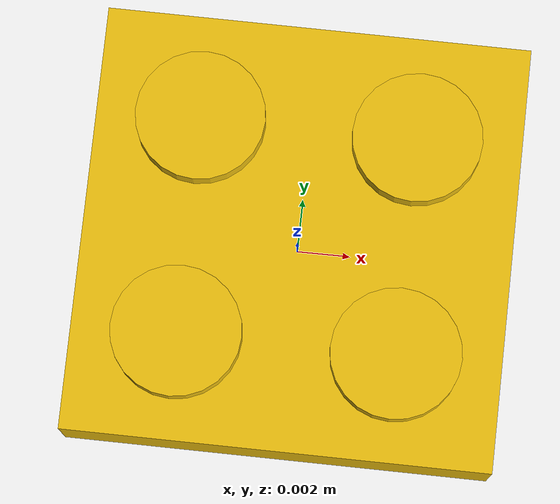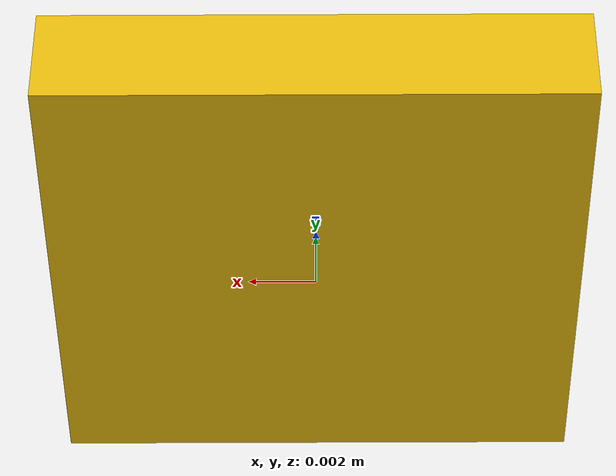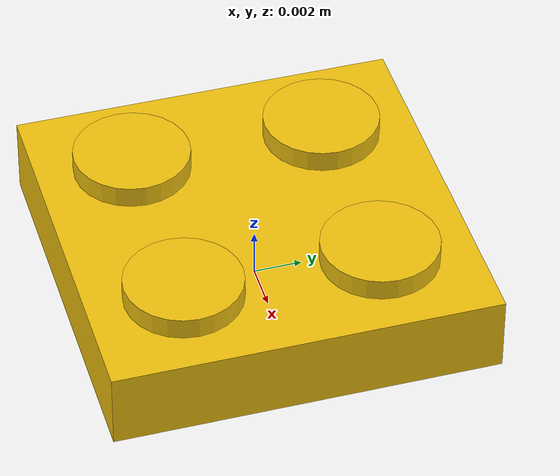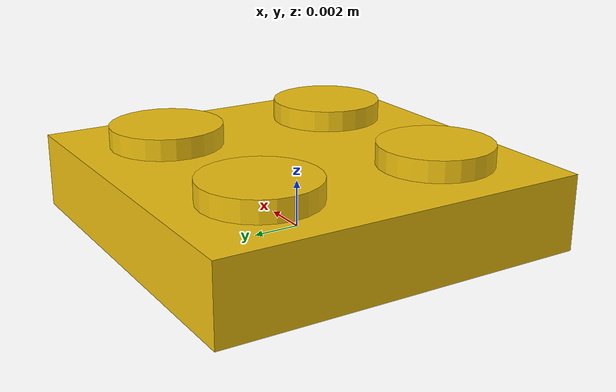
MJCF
<mujoco model="lego_plate_2x2">
  <compiler angle="radian"/>

  <default>
    <default class="lego_plate_2x2">
      <!-- density is tuned down from ABS's real ~1050 kg/m3 so the solid
           primitive body (no hollow underside) lands near a real piece's mass -->
      <geom type="box" material="lego_yellow" density="500" friction="0.9 0.02 0.001"/>
      <default class="lego_plate_2x2/stud">
        <geom type="cylinder"/>
      </default>
    </default>
  </default>

  <asset>
    <material name="lego_yellow" rgba="0.93 0.75 0.05 1"/>
  </asset>

  <worldbody>
    <body name="lego_plate_2x2" childclass="lego_plate_2x2">
      <freejoint name="lego_plate_2x2_freejoint"/>

      <!-- plate body: 2 studs long (x) x 2 studs wide (y) x 3.2mm tall (z) -->
      <!-- mass/inertia are left to MuJoCo, computed from geom volume x density above -->
      <geom name="lego_plate_2x2_body" size="0.0079 0.0079 0.0016" pos="0 0 0.0016"/>

      <geom class="lego_plate_2x2/stud" name="lego_plate_2x2_stud_00" size="0.0024 0.00085" pos="-0.004 -0.004 0.00325"/>
      <geom class="lego_plate_2x2/stud" name="lego_plate_2x2_stud_01" size="0.0024 0.00085" pos="-0.004 0.004 0.00325"/>
      <geom class="lego_plate_2x2/stud" name="lego_plate_2x2_stud_10" size="0.0024 0.00085" pos="0.004 -0.004 0.00325"/>
      <geom class="lego_plate_2x2/stud" name="lego_plate_2x2_stud_11" size="0.0024 0.00085" pos="0.004 0.004 0.00325"/>
    </body>
  </worldbody>
</mujoco>
